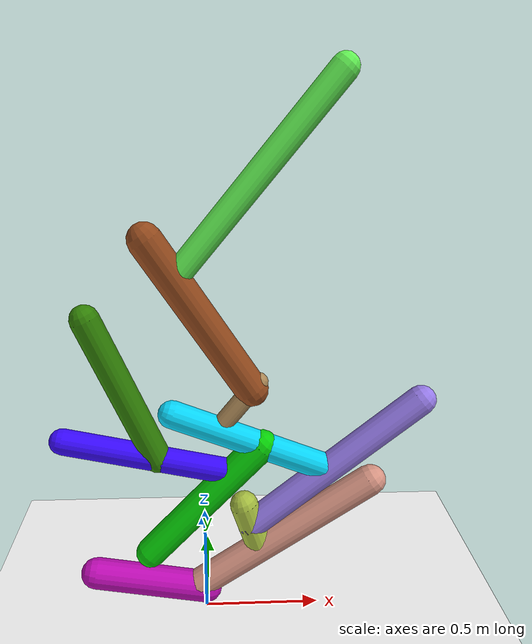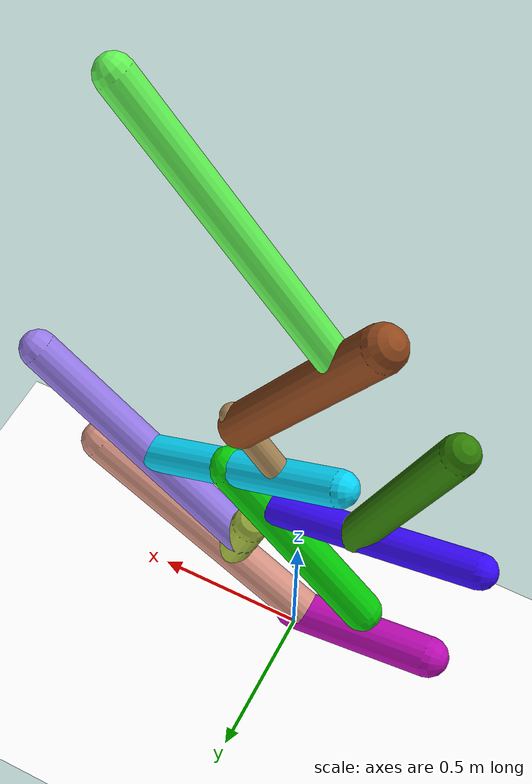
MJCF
<mujoco model="morphology">
  <option timestep="0.01"/>
  <default>
    <default class="/"/>
    <default class="0/"/>
    <default class="0/1/"/>
    <default class="0/1/2/"/>
    <default class="0/1/2/3/"/>
    <default class="0/1/2/3/4/"/>
    <default class="0/1/2/3/4/5/"/>
    <default class="0/1/2/3/4/5/6/"/>
    <default class="0/1/2/3/4/5/6/7/"/>
    <default class="0/1/2/3/4/8/"/>
    <default class="0/1/2/3/4/8/9/"/>
    <default class="0/1/2/3/4/8/9/10/"/>
  </default>
  <asset>
    <texture name="texplane" type="2d" builtin="checker" rgb1="0.10000000000000001 0.20000000000000001 0.29999999999999999" rgb2="0.20000000000000001 0.29999999999999999 0.40000000000000002" width="300" height="300"/>
    <material name="MatPlane" class="/" texture="texplane" texrepeat="20 20" specular="1" shininess="1" reflectance="0.5"/>
  </asset>
  <worldbody>
    <light name="//unnamed_light_0" class="/" directional="true" pos="0 0 1.5" dir="0 0 -1.3" cutoff="100" exponent="1" diffuse="1 1 1" specular="0.10000000000000001 0.10000000000000001 0.10000000000000001"/>
    <geom name="ground" class="/" type="plane" size="15 15 0.5" material="MatPlane" rgba="1 1 1 1"/>
    <site name="body" class="/" size="9.9999999999999995e-07 9.9999999999999995e-07 9.9999999999999995e-07" pos="0 0 0.10000000000000001"/>
    <body pos="0 0 0.10000000000000001" name="0/">
      <joint name="0/rootx/" class="/" type="slide" axis="1 0 0" limited="false" stiffness="0" armature="0" damping="0"/>
      <joint name="0/rootz/" class="/" type="slide" axis="0 0 1" limited="false" stiffness="0" armature="0" damping="0"/>
      <joint name="0/rooty/" class="/" type="hinge" axis="0 1 0" limited="false" stiffness="0" armature="0" damping="0"/>
      <geom name="0/geom" class="0/" type="capsule" contype="1" conaffinity="1" condim="3" size="0.06845316394854177" rgba="0.75333942532333076 0.042459500140377582 0.71663470771913473 1" friction="0.59999999999999998 0.10000000000000001 0.10000000000000001" fromto="0 0 0 -0.4810562623365956 0 0.089096311233515024"/>
      <site name="0/end0" class="0/" size="0.0050000000000000001" pos="-0.4810562623365956 0 0.089096311233515024"/>
      <site name="0/attach1" class="0/" size="9.9999999999999995e-07 9.9999999999999995e-07 9.9999999999999995e-07" pos="-0.046690435485968136 0 0.0086475239953854987"/>
      <body pos="-0.046690435485968136 0 0.0086475239953854987" name="0/1/">
        <joint name="0/1/joint/" class="0/" type="hinge" axis="0 1 0" limited="true" range="-68.622305171773391 68.622305171773391"/>
        <geom name="0/1/geom" class="0/1/" type="capsule" contype="1" conaffinity="1" condim="3" size="0.065599581334619975" rgba="0.86097743911584623 0.59394724603045357 0.52447908739214844 1" friction="0.59999999999999998 0.10000000000000001 0.10000000000000001" fromto="0 0 0 0.74782599635522962 0 0.52797074457096738"/>
        <site name="0/1/end1" class="0/1/" size="0.0050000000000000001" pos="0.74782599635522962 0 0.52797074457096738"/>
        <site name="0/1/attach2" class="0/1/" size="9.9999999999999995e-07 9.9999999999999995e-07 9.9999999999999995e-07" pos="0.28559158825690462 0 0.20162979654371121"/>
        <body pos="0.28559158825690462 0 0.20162979654371121" name="0/1/2/">
          <joint name="0/1/2/joint/" class="0/1/" type="hinge" axis="0 1 0" limited="true" range="-69.557892719997042 69.557892719997042"/>
          <geom name="0/1/2/geom" class="0/1/2/" type="capsule" contype="1" conaffinity="1" condim="3" size="0.060172354565072396" rgba="0.65996365151361747 0.75392558218526129 0.25560756986688371 1" friction="0.59999999999999998 0.10000000000000001 0.10000000000000001" fromto="0 0 0 -0.07105359875253181 0 0.21677986254459725"/>
          <site name="0/1/2/end2" class="0/1/2/" size="0.0050000000000000001" pos="-0.07105359875253181 0 0.21677986254459725"/>
          <site name="0/1/2/attach3" class="0/1/2/" size="9.9999999999999995e-07 9.9999999999999995e-07 9.9999999999999995e-07" pos="-0.038283990860042215 0 0.11680194137953989"/>
          <body pos="-0.038283990860042215 0 0.11680194137953989" name="0/1/2/3/">
            <geom name="0/1/2/3/geom" class="0/1/2/3/" type="capsule" contype="1" conaffinity="1" condim="3" size="0.060779414265485457" rgba="0.60126900667426775 0.49276898186375628 0.93234551357904349 1" friction="0.59999999999999998 0.10000000000000001 0.10000000000000001" fromto="0 0 0 0.68058092289528349 0 0.57707025167123649"/>
            <site name="0/1/2/3/end3" class="0/1/2/3/" size="0.0050000000000000001" pos="0.68058092289528349 0 0.57707025167123649"/>
            <site name="0/1/2/3/attach4" class="0/1/2/3/" size="9.9999999999999995e-07 9.9999999999999995e-07 9.9999999999999995e-07" pos="0.31960752839568607 0 0.27099789406776886"/>
            <body pos="0.31960752839568607 0 0.27099789406776886" name="0/1/2/3/4/">
              <joint name="0/1/2/3/4/joint/" class="0/1/2/3/" type="hinge" axis="0 1 0" limited="true" range="-63.521433875115427 63.521433875115427"/>
              <geom name="0/1/2/3/4/geom" class="0/1/2/3/4/" type="capsule" contype="1" conaffinity="1" condim="3" size="0.057855121790027643" rgba="0.030103996992643212 0.8435416829883664 0.98222324390622118 1" friction="0.59999999999999998 0.10000000000000001 0.10000000000000001" fromto="0 0 0 -0.6414425767738412 0 0.26084290825333012"/>
              <site name="0/1/2/3/4/end4" class="0/1/2/3/4/" size="0.0050000000000000001" pos="-0.6414425767738412 0 0.26084290825333012"/>
              <site name="0/1/2/3/4/attach5" class="0/1/2/3/4/" size="9.9999999999999995e-07 9.9999999999999995e-07 9.9999999999999995e-07" pos="-0.46121875921993966 0 0.18755481293587198"/>
              <body pos="-0.46121875921993966 0 0.18755481293587198" name="0/1/2/3/4/5/">
                <joint name="0/1/2/3/4/5/joint/" class="0/1/2/3/4/" type="hinge" axis="0 1 0" limited="true" range="-43.174614205440093 43.174614205440093"/>
                <geom name="0/1/2/3/4/5/geom" class="0/1/2/3/4/5/" type="capsule" contype="1" conaffinity="1" condim="3" size="0.040313534054828785" rgba="0.68514820977241331 0.54397976533100134 0.34693004647943826 1" friction="0.59999999999999998 0.10000000000000001 0.10000000000000001" fromto="0 0 0 0.16403231782914407 0 0.20808155168298337"/>
                <site name="0/1/2/3/4/5/end5" class="0/1/2/3/4/5/" size="0.0050000000000000001" pos="0.16403231782914407 0 0.20808155168298337"/>
                <site name="0/1/2/3/4/5/attach6" class="0/1/2/3/4/5/" size="9.9999999999999995e-07 9.9999999999999995e-07 9.9999999999999995e-07" pos="0.13886274780866451 0 0.17615294606204665"/>
                <body pos="0.13886274780866451 0 0.17615294606204665" name="0/1/2/3/4/5/6/">
                  <joint name="0/1/2/3/4/5/6/joint/" class="0/1/2/3/4/5/" type="hinge" axis="0 1 0" limited="true" range="-44.430327258852252 44.430327258852252"/>
                  <geom name="0/1/2/3/4/5/6/geom" class="0/1/2/3/4/5/6/" type="capsule" contype="1" conaffinity="1" condim="3" size="0.066752421348117513" rgba="0.58713170856127705 0.29358484914169614 0.11521731312360328 1" friction="0.59999999999999998 0.10000000000000001 0.10000000000000001" fromto="0 0 0 -0.39087217229053933 0 0.59636582356865064"/>
                  <site name="0/1/2/3/4/5/6/end6" class="0/1/2/3/4/5/6/" size="0.0050000000000000001" pos="-0.39087217229053933 0 0.59636582356865064"/>
                  <site name="0/1/2/3/4/5/6/attach7" class="0/1/2/3/4/5/6/" size="9.9999999999999995e-07 9.9999999999999995e-07 9.9999999999999995e-07" pos="-0.29354079549863638 0 0.44786431644056496"/>
                  <body pos="-0.29354079549863638 0 0.44786431644056496" name="0/1/2/3/4/5/6/7/">
                    <geom name="0/1/2/3/4/5/6/7/geom" class="0/1/2/3/4/5/6/7/" type="capsule" contype="1" conaffinity="1" condim="3" size="0.051076600102941058" rgba="0.39415562311483254 0.97555338971742456 0.33591928627504863 1" friction="0.59999999999999998 0.10000000000000001 0.10000000000000001" fromto="0 0 0 0.59811380714805829 0 0.7176464573155652"/>
                    <site name="0/1/2/3/4/5/6/7/end7" class="0/1/2/3/4/5/6/7/" size="0.0050000000000000001" pos="0.59811380714805829 0 0.7176464573155652"/>
                  </body>
                </body>
              </body>
              <site name="0/1/2/3/4/attach8" class="0/1/2/3/4/" size="9.9999999999999995e-07 9.9999999999999995e-07 9.9999999999999995e-07" pos="-0.2801815270485104 0 0.11393594220353749"/>
              <body pos="-0.2801815270485104 0 0.11393594220353749" name="0/1/2/3/4/8/">
                <joint name="0/1/2/3/4/8/joint/" class="0/1/2/3/4/" type="hinge" axis="0 1 0" limited="true" range="-46.405040976731371 46.405040976731371"/>
                <geom name="0/1/2/3/4/8/geom" class="0/1/2/3/4/8/" type="capsule" contype="1" conaffinity="1" condim="3" size="0.065625481684469716" rgba="0.028148474159832126 0.8335017126566644 0.031498055776645995 1" friction="0.59999999999999998 0.10000000000000001 0.10000000000000001" fromto="0 0 0 -0.47687981150431324 0 -0.51792678167218087"/>
                <site name="0/1/2/3/4/8/end8" class="0/1/2/3/4/8/" size="0.0050000000000000001" pos="-0.47687981150431324 0 -0.51792678167218087"/>
                <site name="0/1/2/3/4/8/attach9" class="0/1/2/3/4/8/" size="9.9999999999999995e-07 9.9999999999999995e-07 9.9999999999999995e-07" pos="-0.11402915294811394 0 -0.12384410238907201"/>
                <body pos="-0.11402915294811394 0 -0.12384410238907201" name="0/1/2/3/4/8/9/">
                  <joint name="0/1/2/3/4/8/9/joint/" class="0/1/2/3/4/8/" type="hinge" axis="0 1 0" limited="true" range="-50.876458575909425 50.876458575909425"/>
                  <geom name="0/1/2/3/4/8/9/geom" class="0/1/2/3/4/8/9/" type="capsule" contype="1" conaffinity="1" condim="3" size="0.054231301483346823" rgba="0.22013209133321809 0.029917155743389823 0.99806063977541926 1" friction="0.59999999999999998 0.10000000000000001 0.10000000000000001" fromto="0 0 0 -0.69250216106791329 0 0.15765692934489595"/>
                  <site name="0/1/2/3/4/8/9/end9" class="0/1/2/3/4/8/9/" size="0.0050000000000000001" pos="-0.69250216106791329 0 0.15765692934489595"/>
                  <site name="0/1/2/3/4/8/9/attach10" class="0/1/2/3/4/8/9/" size="9.9999999999999995e-07 9.9999999999999995e-07 9.9999999999999995e-07" pos="-0.3131551982838347 0 0.071293765919352298"/>
                  <body pos="-0.3131551982838347 0 0.071293765919352298" name="0/1/2/3/4/8/9/10/">
                    <joint name="0/1/2/3/4/8/9/10/joint/" class="0/1/2/3/4/8/9/" type="hinge" axis="0 1 0" limited="true" range="-68.045865841434178 68.045865841434178"/>
                    <geom name="0/1/2/3/4/8/9/10/geom" class="0/1/2/3/4/8/9/10/" type="capsule" contype="1" conaffinity="1" condim="3" size="0.05844106842506018" rgba="0.19415474005851008 0.51183605332488802 0.023595860184029371 1" friction="0.59999999999999998 0.10000000000000001 0.10000000000000001" fromto="0 0 0 -0.24672965501061428 0 0.60069401033601189"/>
                    <site name="0/1/2/3/4/8/9/10/end10" class="0/1/2/3/4/8/9/10/" size="0.0050000000000000001" pos="-0.24672965501061428 0 0.60069401033601189"/>
                  </body>
                </body>
              </body>
            </body>
          </body>
        </body>
      </body>
      <camera name="0/side" class="0/" mode="trackcom" pos="0.40000000000000002 -4 0.20000000000000001" quat="0.70699999999999996 0.70699999999999996 0 0"/>
    </body>
  </worldbody>
  <actuator>
    <motor name="0/1/motor" class="0/1/" ctrllimited="true" ctrlrange="-1 1" gear="76" joint="0/1/joint/"/>
    <motor name="0/1/2/motor" class="0/1/2/" ctrllimited="true" ctrlrange="-1 1" gear="68" joint="0/1/2/joint/"/>
    <motor name="0/1/2/3/4/motor" class="0/1/2/3/4/" ctrllimited="true" ctrlrange="-1 1" gear="53" joint="0/1/2/3/4/joint/"/>
    <motor name="0/1/2/3/4/5/motor" class="0/1/2/3/4/5/" ctrllimited="true" ctrlrange="-1 1" gear="73" joint="0/1/2/3/4/5/joint/"/>
    <motor name="0/1/2/3/4/5/6/motor" class="0/1/2/3/4/5/6/" ctrllimited="true" ctrlrange="-1 1" gear="86" joint="0/1/2/3/4/5/6/joint/"/>
    <motor name="0/1/2/3/4/8/motor" class="0/1/2/3/4/8/" ctrllimited="true" ctrlrange="-1 1" gear="58" joint="0/1/2/3/4/8/joint/"/>
    <motor name="0/1/2/3/4/8/9/motor" class="0/1/2/3/4/8/9/" ctrllimited="true" ctrlrange="-1 1" gear="57" joint="0/1/2/3/4/8/9/joint/"/>
    <motor name="0/1/2/3/4/8/9/10/motor" class="0/1/2/3/4/8/9/10/" ctrllimited="true" ctrlrange="-1 1" gear="57" joint="0/1/2/3/4/8/9/10/joint/"/>
  </actuator>
  <sensor>
    <subtreelinvel name="velocity" body="0/"/>
  </sensor>
</mujoco>
